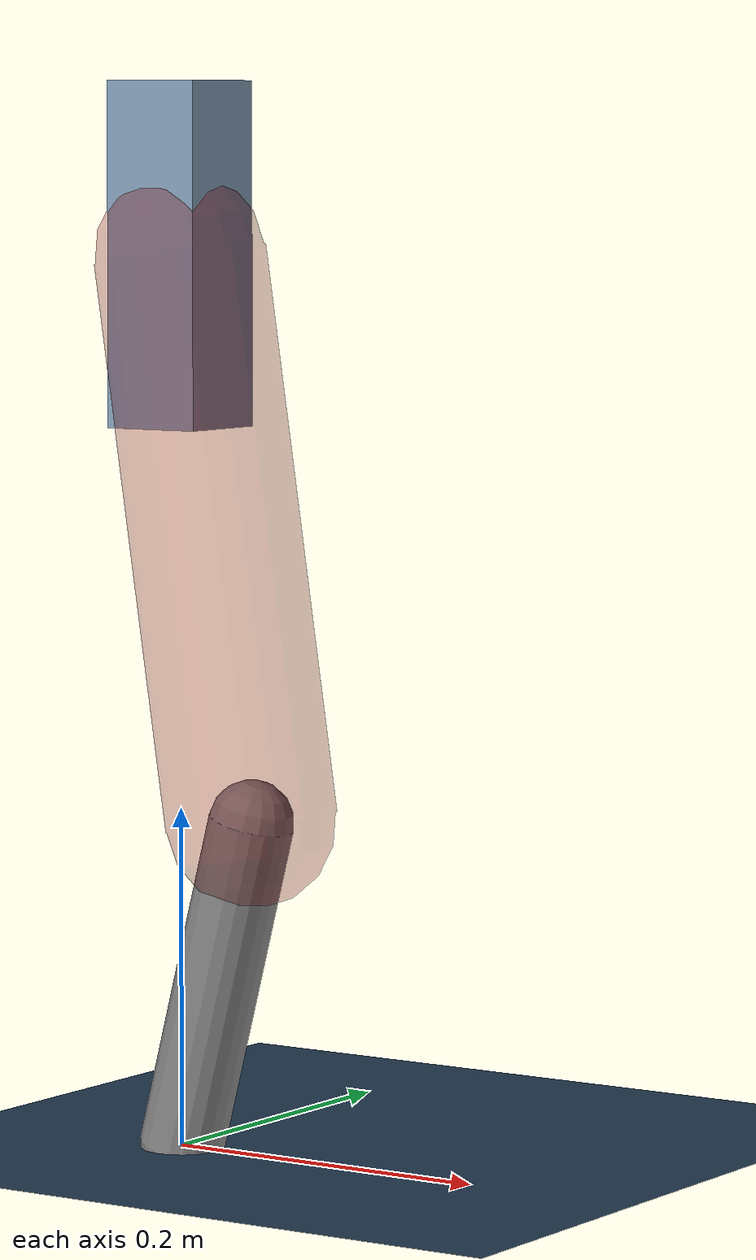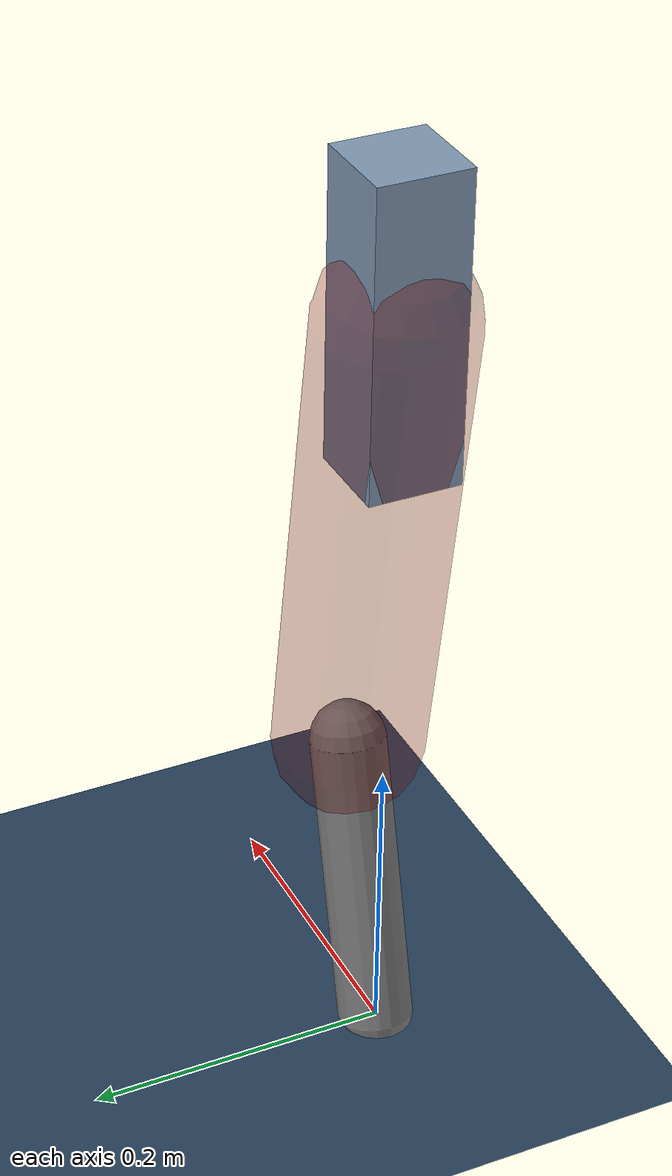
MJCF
<mujoco model="Hopper2D">
	<compiler inertiafromgeom="true" angle="radian" />
	<option timestep="0.001" integrator="implicit" cone="elliptic" solver="Newton" tolerance="1e-10" />

	<default>
		<geom contype="1" conaffinity="1" condim="3" friction="2 0.005 0.0001" solref="0.005 1" />
		<joint limited="true" damping="0.1" />
	</default>

	<asset>
		<texture name="skybox" type="skybox" builtin="gradient" rgb1=".4 .6 .8" rgb2="0 0 0" width="800" height="800" />
		<texture name="grid" type="2d" builtin="checker" rgb1=".1 .2 .3" rgb2=".2 .3 .4" width="300" height="300" mark="edge" markrgb=".2 .3 .4" />
		<material name="ground" texture="grid" texrepeat="1 1" texuniform="true" reflectance="0.1" />
		<material name="leg" rgba="0.5 0.6 0.7 1" />
	</asset>

	<worldbody>

		<geom name="floor" type="plane" size="5 5 0.25" material="ground" />

		<light directional="false" diffuse="0.8 0.8 0.8" specular="0.3 0.3 0.3" pos="0 0 2" dir="0 0 -1" />
		<light mode="targetbodycom" target="base" directional="false" diffuse="0.8 0.8 0.8" specular="0.3 0.3 0.3" pos="0 0 2" dir="0 0 -1" />

		<camera name="fixed" pos="0 -2 1" xyaxes="1 0 0 0 0 1" />
		<camera name="tracking" mode="trackcom" pos="0 -3 1" />

		<body name="root" pos="0 0 0.5233922265741688">
			<joint name="slide_x" type="slide" axis="1 0 0" range="-100 100" />
			<joint name="slide_z" type="slide" axis="0 0 1" range="0 10" />

			<body name="base" pos="0 0 0">
				<geom name="torso" type="box" size="0.03 0.03 0.1" mass="2.983" material="leg" />

				<body name="link1" pos="0 0 0" euler="0 1.4199665444817375 0">
					<joint type="hinge" axis="0 -1 0" pos="0 0 0" name="hinge1" limited="true" range="-3.14 3.14" stiffness="0" damping="0.1" />
					<geom name="thigh" type="capsule" fromto="0 0 0 0.3314422717334581 0 0" size="0.05" rgba="0.5 0 0 0.3" mass="1.0748383608536827" />

					<body name="link2" pos="0.3314422717334581 0 0" euler="0 0.40000611879291054 0">
						<joint type="hinge" axis="0 -1 0" pos="0 0 0" name="hinge2" limited="true" range="-3.14 3.14" stiffness="0" damping="0.1" />
						<geom name="shank" type="capsule" fromto="0 0 0 0.20194995484071074 0 0" size="0.025" mass="0.40255495935663965" />

					</body>
				</body>
			</body>
		</body>
	</worldbody>

	<actuator>
		<motor name="torque1" joint="hinge1" ctrlrange="-101.15010089972512 101.15010089972512" ctrllimited="true" gear="1" />
		<motor name="torque2" joint="hinge2" ctrlrange="-99.31714441312339 99.31714441312339" ctrllimited="true" gear="1" />
	</actuator>
</mujoco>
